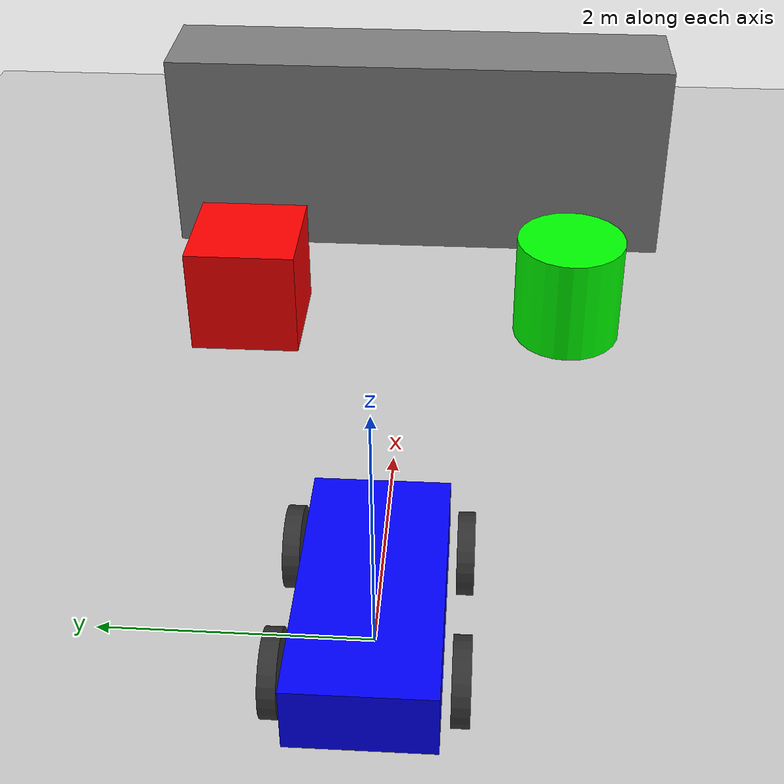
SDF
<?xml version="1.0" ?>
<sdf version="1.8">
    <world name="lab1_world">

        <physics name="1ms" type="ignored">
            <max_step_size>0.001</max_step_size>
            <real_time_factor>1.0</real_time_factor>
        </physics>
        <plugin filename="gz-sim-physics-system" name="gz::sim::systems::Physics"></plugin>
        <plugin filename="gz-sim-user-commands-system" name="gz::sim::systems::UserCommands"></plugin>
        <plugin filename="gz-sim-scene-broadcaster-system" name="gz::sim::systems::SceneBroadcaster"></plugin>
        <plugin filename="gz-sim-sensors-system" name="gz::sim::systems::Sensors">
            <render_engine>ogre2</render_engine>
        </plugin>

        <light type="directional" name="sun">
            <cast_shadows>true</cast_shadows>
            <pose>0 0 10 0 0 0</pose>
            <diffuse>0.8 0.8 0.8 1</diffuse>
            <specular>0.2 0.2 0.2 1</specular>
            <direction>-0.5 0.1 -0.9</direction>
        </light>

        <model name="ground_plane">
            <static>true</static>
            <link name="link">
                <collision name="collision"><geometry><plane><normal>0 0 1</normal><size>100 100</size></plane></geometry></collision>
                <visual name="visual">
                    <geometry><plane><normal>0 0 1</normal><size>100 100</size></plane></geometry>
                    <material><ambient>0.8 0.8 0.8 1</ambient><diffuse>0.8 0.8 0.8 1</diffuse></material>
                </visual>
            </link>
        </model>

        <model name='vehicle_blue'>
            <pose>0 0 0.325 0 0 0</pose>

            <link name='chassis'>
                <pose>-0.15 0 0.175 0 0 0</pose>
                <inertial><mass>1.14395</mass><inertia><ixx>0.126</ixx><ixy>0</ixy><ixz>0</ixz><iyy>0.416</iyy><iyz>0</iyz><izz>0.481</izz></inertia></inertial>
                <visual name='visual'><geometry><box><size>2.0 1.0 0.5</size></box></geometry><material><ambient>0.0 0.0 1.0 1</ambient><diffuse>0.0 0.0 1.0 1</diffuse></material></visual>
                <collision name='collision'><geometry><box><size>2.0 1.0 0.5</size></box></geometry></collision>

                <sensor name='gpu_lidar' type='gpu_lidar'>
                    <pose relative_to='lidar_frame'>0 0 0 0 0 0</pose>
                    <topic>lidar</topic>
                    <update_rate>10</update_rate>
                    <ray>
                        <scan>
                            <horizontal><samples>640</samples><resolution>1</resolution><min_angle>-1.396263</min_angle><max_angle>1.396263</max_angle></horizontal>
                            <vertical><samples>1</samples><resolution>0.01</resolution><min_angle>0</min_angle><max_angle>0</max_angle></vertical>
                        </scan>
                        <range><min>0.08</min><max>10.0</max></range>
                    </ray>
                    <always_on>1</always_on>
                    <visualize>true</visualize>
                </sensor>
            </link>

            <frame name="lidar_frame" attached_to='chassis'><pose>0.8 0 0.5 0 0 0</pose></frame>

            <link name='left_wheel_front'>
                <pose>0.6 0.625 -0.025 -1.5707 0 0</pose>
                <inertial><mass>2</mass><inertia><ixx>0.145</ixx><iyy>0.145</iyy><izz>0.125</izz></inertia></inertial>
                <visual name='visual'><geometry><cylinder><radius>0.3</radius><length>0.125</length></cylinder></geometry><material><ambient>0.2 0.2 0.2 1</ambient><diffuse>0.2 0.2 0.2 1</diffuse></material></visual>
                <collision name='collision'><geometry><cylinder><radius>0.3</radius><length>0.125</length></cylinder></geometry></collision>
            </link>
            <link name='left_wheel_rear'>
                <pose>-0.6 0.625 -0.025 -1.5707 0 0</pose>
                <inertial><mass>2</mass><inertia><ixx>0.145</ixx><iyy>0.145</iyy><izz>0.125</izz></inertia></inertial>
                <visual name='visual'><geometry><cylinder><radius>0.3</radius><length>0.125</length></cylinder></geometry><material><ambient>0.2 0.2 0.2 1</ambient><diffuse>0.2 0.2 0.2 1</diffuse></material></visual>
                <collision name='collision'><geometry><cylinder><radius>0.3</radius><length>0.125</length></cylinder></geometry></collision>
            </link>
             <link name='right_wheel_front'>
                <pose>0.6 -0.625 -0.025 -1.5707 0 0</pose>
                <inertial><mass>2</mass><inertia><ixx>0.145</ixx><iyy>0.145</iyy><izz>0.125</izz></inertia></inertial>
                <visual name='visual'><geometry><cylinder><radius>0.3</radius><length>0.125</length></cylinder></geometry><material><ambient>0.2 0.2 0.2 1</ambient><diffuse>0.2 0.2 0.2 1</diffuse></material></visual>
                <collision name='collision'><geometry><cylinder><radius>0.3</radius><length>0.125</length></cylinder></geometry></collision>
            </link>
            <link name='right_wheel_rear'>
                <pose>-0.6 -0.625 -0.025 -1.5707 0 0</pose>
                <inertial><mass>2</mass><inertia><ixx>0.145</ixx><iyy>0.145</iyy><izz>0.125</izz></inertia></inertial>
                <visual name='visual'><geometry><cylinder><radius>0.3</radius><length>0.125</length></cylinder></geometry><material><ambient>0.2 0.2 0.2 1</ambient><diffuse>0.2 0.2 0.2 1</diffuse></material></visual>
                <collision name='collision'><geometry><cylinder><radius>0.3</radius><length>0.125</length></cylinder></geometry></collision>
            </link>

            <joint name='left_wheel_front_joint' type='revolute'><parent>chassis</parent><child>left_wheel_front</child><axis><xyz>0 0 1</xyz><limit><lower>-1.79e+308</lower><upper>1.79e+308</upper></limit></axis></joint>
            <joint name='left_wheel_rear_joint' type='revolute'><parent>chassis</parent><child>left_wheel_rear</child><axis><xyz>0 0 1</xyz><limit><lower>-1.79e+308</lower><upper>1.79e+308</upper></limit></axis></joint>
            <joint name='right_wheel_front_joint' type='revolute'><parent>chassis</parent><child>right_wheel_front</child><axis><xyz>0 0 1</xyz><limit><lower>-1.79e+308</lower><upper>1.79e+308</upper></limit></axis></joint>
            <joint name='right_wheel_rear_joint' type='revolute'><parent>chassis</parent><child>right_wheel_rear</child><axis><xyz>0 0 1</xyz><limit><lower>-1.79e+308</lower><upper>1.79e+308</upper></limit></axis></joint>

            <plugin filename="gz-sim-diff-drive-system" name="gz::sim::systems::DiffDrive">
                <left_joint>left_wheel_front_joint</left_joint>
                <left_joint>left_wheel_rear_joint</left_joint>
                <right_joint>right_wheel_front_joint</right_joint>
                <right_joint>right_wheel_rear_joint</right_joint>
                <wheel_separation>1.25</wheel_separation>
                <wheel_radius>0.3</wheel_radius>
                <odom_publish_frequency>1</odom_publish_frequency>
                <topic>cmd_vel</topic>
            </plugin>
        </model>

        <model name='red_box'>
            <pose>4 1.5 0.5 0 0 0</pose>
            <static>true</static>
            <link name='link'>
                <visual name='visual'><geometry><box><size>1 1 1</size></box></geometry><material><ambient>1 0 0 1</ambient><diffuse>1 0 0 1</diffuse></material></visual>
                <collision name='collision'><geometry><box><size>1 1 1</size></box></geometry></collision>
            </link>
        </model>

        <model name='green_cylinder'>
            <pose>4 -1.5 0.5 0 0 0</pose>
            <static>true</static>
            <link name='link'>
                <visual name='visual'><geometry><cylinder><radius>0.5</radius><length>1</length></cylinder></geometry><material><ambient>0 1 0 1</ambient><diffuse>0 1 0 1</diffuse></material></visual>
                <collision name='collision'><geometry><cylinder><radius>0.5</radius><length>1</length></cylinder></geometry></collision>
            </link>
        </model>

        <model name='gray_wall'>
            <pose>6 0 1 0 0 0</pose>
            <static>true</static>
            <link name='link'>
                <visual name='visual'><geometry><box><size>1 5 2</size></box></geometry><material><ambient>0.5 0.5 0.5 1</ambient><diffuse>0.5 0.5 0.5 1</diffuse></material></visual>
                <collision name='collision'><geometry><box><size>1 5 2</size></box></geometry></collision>
            </link>
        </model>

    </world>
</sdf>
